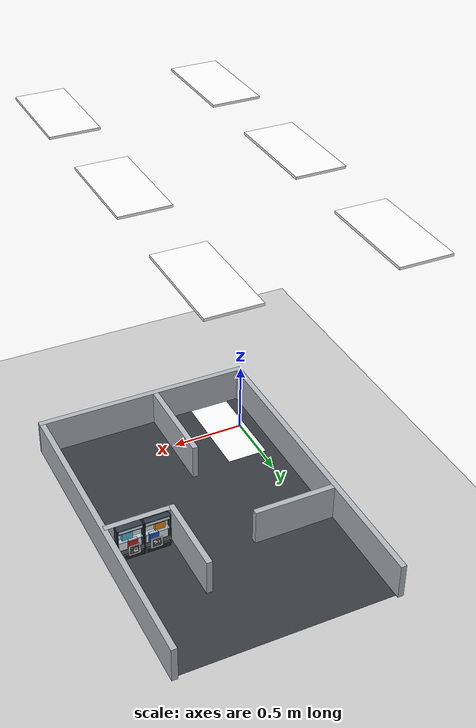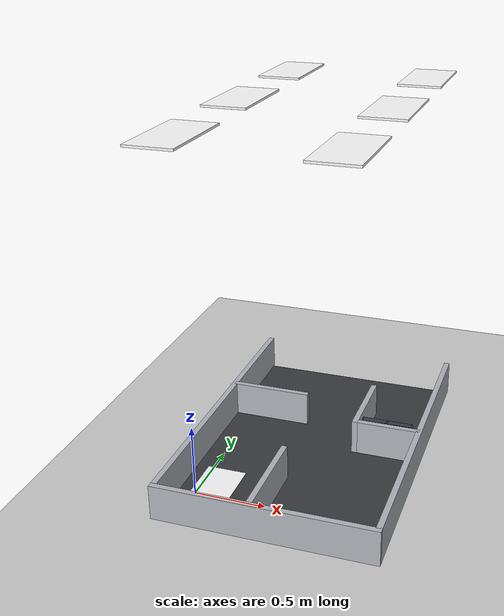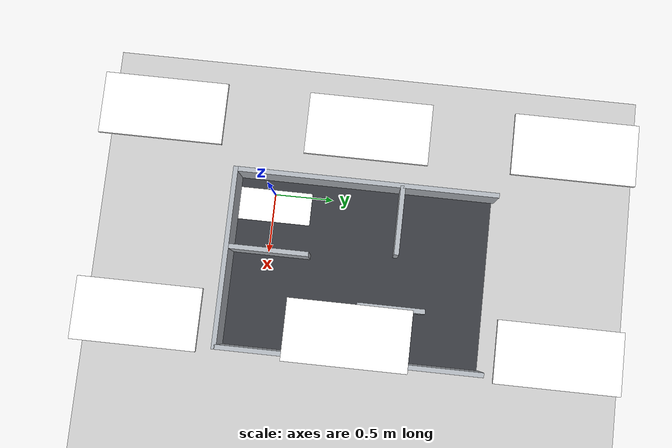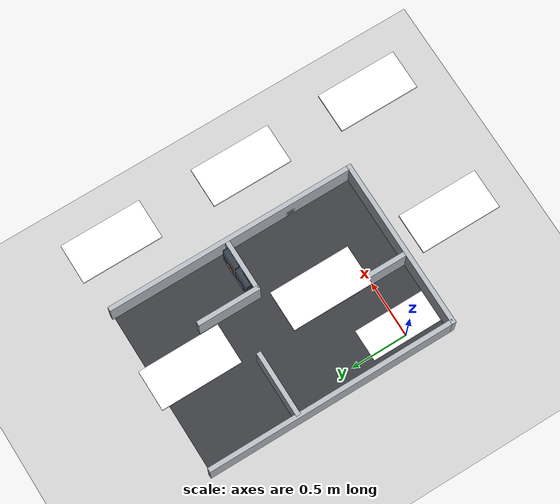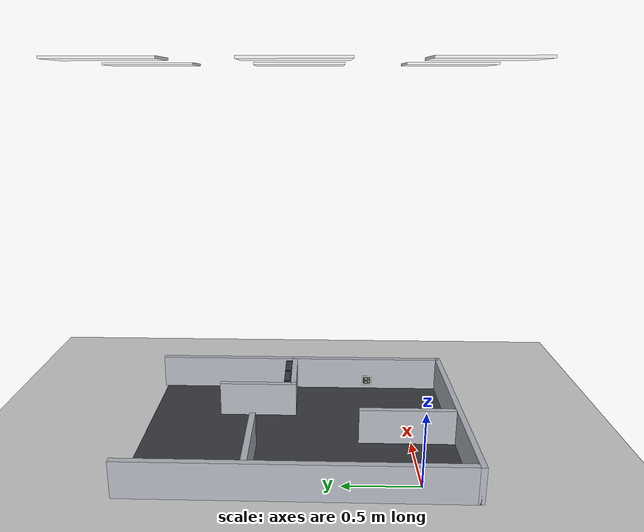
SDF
<sdf version="1.8">
 <world name="default">
  <model name="ground_plane">
   <static>true</static>
   <link name="link">
    <collision name="collision">
     <geometry><plane><normal>0 0 1</normal><size>10 10</size></plane></geometry>
    </collision>
    <visual name="visual">
     <geometry><plane><normal>0 0 1</normal><size>10 10</size></plane></geometry>
     <material><ambient>0.8 0.8 0.8 1</ambient><diffuse>0.8 0.8 0.8 1</diffuse></material>
    </visual>
   </link>
  </model>
  <model name="arena_interior_floor">
   <static>true</static>
   <pose>0.6000 0.7800 0.0005 0 0 0</pose>
   <link name="link">
    <collision name="collision"><geometry><box><size>1.4400 2.1600 0.0010</size></box></geometry></collision>
    <visual name="visual">
     <geometry><box><size>1.4400 2.1600 0.0010</size></box></geometry>
     <material>
      <ambient>0.18 0.18 0.20 1</ambient>
      <diffuse>0.22 0.23 0.25 1</diffuse>
      <specular>0.12 0.12 0.12 1</specular>
     </material>
    </visual>
   </link>
  </model>
  <model name="office_ceiling_fixtures">
   <static>true</static>
   <link name="link">
    <visual name="troffer_0">
     <pose>0.10 -0.22 2.505 0 0 0</pose>
     <geometry><box><size>0.30 0.60 0.015</size></box></geometry>
     <material><ambient>1 1 1 1</ambient><diffuse>1 1 1 1</diffuse><emissive>0.9 0.9 0.95 1</emissive></material>
    </visual>
    <visual name="troffer_1">
     <pose>1.10 -0.22 2.505 0 0 0</pose>
     <geometry><box><size>0.30 0.60 0.015</size></box></geometry>
     <material><ambient>1 1 1 1</ambient><diffuse>1 1 1 1</diffuse><emissive>0.9 0.9 0.95 1</emissive></material>
    </visual>
    <visual name="troffer_2">
     <pose>0.10 0.78 2.505 0 0 0</pose>
     <geometry><box><size>0.30 0.60 0.015</size></box></geometry>
     <material><ambient>1 1 1 1</ambient><diffuse>1 1 1 1</diffuse><emissive>0.9 0.9 0.95 1</emissive></material>
    </visual>
    <visual name="troffer_3">
     <pose>1.10 0.78 2.505 0 0 0</pose>
     <geometry><box><size>0.30 0.60 0.015</size></box></geometry>
     <material><ambient>1 1 1 1</ambient><diffuse>1 1 1 1</diffuse><emissive>0.9 0.9 0.95 1</emissive></material>
    </visual>
    <visual name="troffer_4">
     <pose>0.10 1.78 2.505 0 0 0</pose>
     <geometry><box><size>0.30 0.60 0.015</size></box></geometry>
     <material><ambient>1 1 1 1</ambient><diffuse>1 1 1 1</diffuse><emissive>0.9 0.9 0.95 1</emissive></material>
    </visual>
    <visual name="troffer_5">
     <pose>1.10 1.78 2.505 0 0 0</pose>
     <geometry><box><size>0.30 0.60 0.015</size></box></geometry>
     <material><ambient>1 1 1 1</ambient><diffuse>1 1 1 1</diffuse><emissive>0.9 0.9 0.95 1</emissive></material>
    </visual>
   </link>
  </model>
  <model name="wall_south">
   <static>true</static>
   <pose>0.6000 -0.3200 0.1250 0 0 0</pose>
   <link name="link">
    <collision name="collision"><geometry><box><size>1.5200 0.0400 0.2500</size></box></geometry></collision>
    <visual name="visual">
     <geometry><box><size>1.5200 0.0400 0.2500</size></box></geometry>
     <material>
      <ambient>0.7 0.72 0.75 1</ambient>
      <diffuse>0.7 0.72 0.75 1</diffuse>
      <specular>0.1 0.1 0.1 1</specular>
     </material>
    </visual>
   </link>
  </model>
  <model name="wall_west">
   <static>true</static>
   <pose>-0.1400 0.7800 0.1250 0 0 0</pose>
   <link name="link">
    <collision name="collision"><geometry><box><size>0.0400 2.2000 0.2500</size></box></geometry></collision>
    <visual name="visual">
     <geometry><box><size>0.0400 2.2000 0.2500</size></box></geometry>
     <material>
      <ambient>0.7 0.72 0.75 1</ambient>
      <diffuse>0.7 0.72 0.75 1</diffuse>
      <specular>0.1 0.1 0.1 1</specular>
     </material>
    </visual>
   </link>
  </model>
  <model name="wall_east">
   <static>true</static>
   <pose>1.3400 0.7800 0.1250 0 0 0</pose>
   <link name="link">
    <collision name="collision"><geometry><box><size>0.0400 2.2000 0.2500</size></box></geometry></collision>
    <visual name="visual">
     <geometry><box><size>0.0400 2.2000 0.2500</size></box></geometry>
     <material>
      <ambient>0.7 0.72 0.75 1</ambient>
      <diffuse>0.7 0.72 0.75 1</diffuse>
      <specular>0.1 0.1 0.1 1</specular>
     </material>
    </visual>
   </link>
  </model>
  <model name="wall_shelf1_divider">
   <static>true</static>
   <pose>0.1500 1.0800 0.1250 0 0 0</pose>
   <link name="link">
    <collision name="collision"><geometry><box><size>0.5800 0.0400 0.2500</size></box></geometry></collision>
    <visual name="visual">
     <geometry><box><size>0.5800 0.0400 0.2500</size></box></geometry>
     <material>
      <ambient>0.7 0.72 0.75 1</ambient>
      <diffuse>0.7 0.72 0.75 1</diffuse>
      <specular>0.1 0.1 0.1 1</specular>
     </material>
    </visual>
   </link>
  </model>
  <model name="wall_center_pillar">
   <static>true</static>
   <pose>0.5100 0.0300 0.1250 0 0 0</pose>
   <link name="link">
    <collision name="collision"><geometry><box><size>0.0400 0.6600 0.2500</size></box></geometry></collision>
    <visual name="visual">
     <geometry><box><size>0.0400 0.6600 0.2500</size></box></geometry>
     <material>
      <ambient>0.7 0.72 0.75 1</ambient>
      <diffuse>0.7 0.72 0.75 1</diffuse>
      <specular>0.1 0.1 0.1 1</specular>
     </material>
    </visual>
   </link>
  </model>
  <model name="wall_shelf2_divider">
   <static>true</static>
   <pose>0.8800 1.0800 0.1250 0 0 0</pose>
   <link name="link">
    <collision name="collision"><geometry><box><size>0.0400 0.5600 0.2500</size></box></geometry></collision>
    <visual name="visual">
     <geometry><box><size>0.0400 0.5600 0.2500</size></box></geometry>
     <material>
      <ambient>0.7 0.72 0.75 1</ambient>
      <diffuse>0.7 0.72 0.75 1</diffuse>
      <specular>0.1 0.1 0.1 1</specular>
     </material>
    </visual>
   </link>
  </model>
  <model name="wall_shelf2_back">
   <static>true</static>
   <pose>1.1100 0.8200 0.1250 0 0 0</pose>
   <link name="link">
    <collision name="collision"><geometry><box><size>0.4600 0.0400 0.2500</size></box></geometry></collision>
    <visual name="visual">
     <geometry><box><size>0.4600 0.0400 0.2500</size></box></geometry>
     <material>
      <ambient>0.7 0.72 0.75 1</ambient>
      <diffuse>0.7 0.72 0.75 1</diffuse>
      <specular>0.1 0.1 0.1 1</specular>
     </material>
    </visual>
   </link>
  </model>
  <model name="shelf2_supermarket_cooler_1">
   <static>true</static>
   <pose>1.0100 0.8650 0.1250 0 0 0</pose>
   <link name="link">
    <collision name="collision"><geometry><box><size>0.1800 0.0500 0.2500</size></box></geometry></collision>
    <visual name="back">
     <pose>0 -0.021 0 0 0 0</pose>
     <geometry><box><size>0.176 0.008 0.250</size></box></geometry>
     <material>
      <ambient>0.12 0.14 0.16 1</ambient>
      <diffuse>0.16 0.18 0.22 1</diffuse>
      <specular>0.3 0.3 0.3 1</specular>
     </material>
    </visual>
    <visual name="side_L">
     <pose>-0.086 0 0 0 0 0</pose>
     <geometry><box><size>0.008 0.050 0.250</size></box></geometry>
     <material><ambient>0.12 0.14 0.16 1</ambient><diffuse>0.16 0.18 0.22 1</diffuse></material>
    </visual>
    <visual name="side_R">
     <pose>0.086 0 0 0 0 0</pose>
     <geometry><box><size>0.008 0.050 0.250</size></box></geometry>
     <material><ambient>0.12 0.14 0.16 1</ambient><diffuse>0.16 0.18 0.22 1</diffuse></material>
    </visual>
    <visual name="kickplate">
     <pose>0 0 -0.105 0 0 0</pose>
     <geometry><box><size>0.176 0.050 0.040</size></box></geometry>
     <material><ambient>0.10 0.10 0.12 1</ambient><diffuse>0.14 0.14 0.16 1</diffuse></material>
    </visual>
    <visual name="canopy">
     <pose>0 0 0.110 0 0 0</pose>
     <geometry><box><size>0.176 0.050 0.030</size></box></geometry>
     <material><ambient>0.15 0.18 0.22 1</ambient><diffuse>0.20 0.24 0.28 1</diffuse></material>
    </visual>
    <visual name="top_light">
     <pose>0 0.024 0.110 0 0 0</pose>
     <geometry><box><size>0.160 0.003 0.020</size></box></geometry>
     <material>
      <ambient>0.7 0.9 1 1</ambient>
      <diffuse>0.85 0.95 1 1</diffuse>
      <emissive>0.7 0.9 1 1</emissive>
     </material>
    </visual>
    <visual name="lining">
     <pose>0 -0.015 0 0 0 0</pose>
     <geometry><box><size>0.164 0.005 0.180</size></box></geometry>
     <material><ambient>0.85 0.88 0.90 1</ambient><diffuse>0.92 0.94 0.96 1</diffuse></material>
    </visual>
    <visual name="price_rail">
     <pose>0 0.024 -0.057 0 0 0</pose>
     <geometry><box><size>0.176 0.004 0.035</size></box></geometry>
     <material>
      <ambient>0.3 0.3 0.35 1</ambient>
      <diffuse>0.4 0.4 0.45 1</diffuse>
      <specular>0.5 0.5 0.5 1</specular>
     </material>
    </visual>
    <visual name="glass_shelf">
     <pose>0 0.002 0.020 0 0 0</pose>
     <geometry><box><size>0.164 0.035 0.006</size></box></geometry>
     <material><ambient>0.7 0.85 0.9 0.8</ambient><diffuse>0.75 0.90 0.95 0.8</diffuse></material>
    </visual>
    <visual name="dairy_1">
     <pose>0.02 0.002 -0.030 0 0 0</pose>
     <geometry><box><size>0.060 0.030 0.075</size></box></geometry>
     <material><ambient>0.10 0.25 0.65 1</ambient><diffuse>0.15 0.35 0.75 1</diffuse></material>
    </visual>
    <visual name="drink_1">
     <pose>-0.02 0.002 0.060 0 0 0</pose>
     <geometry><box><size>0.070 0.025 0.060</size></box></geometry>
     <material><ambient>0.70 0.40 0.05 1</ambient><diffuse>0.95 0.55 0.10 1</diffuse></material>
    </visual>
   </link>
  </model>
  <model name="shelf2_supermarket_cooler_2">
   <static>true</static>
   <pose>1.1900 0.8650 0.1250 0 0 0</pose>
   <link name="link">
    <collision name="collision"><geometry><box><size>0.1800 0.0500 0.2500</size></box></geometry></collision>
    <visual name="back">
     <pose>0 -0.021 0 0 0 0</pose>
     <geometry><box><size>0.176 0.008 0.250</size></box></geometry>
     <material>
      <ambient>0.12 0.14 0.16 1</ambient>
      <diffuse>0.16 0.18 0.22 1</diffuse>
      <specular>0.3 0.3 0.3 1</specular>
     </material>
    </visual>
    <visual name="side_L">
     <pose>-0.086 0 0 0 0 0</pose>
     <geometry><box><size>0.008 0.050 0.250</size></box></geometry>
     <material><ambient>0.12 0.14 0.16 1</ambient><diffuse>0.16 0.18 0.22 1</diffuse></material>
    </visual>
    <visual name="side_R">
     <pose>0.086 0 0 0 0 0</pose>
     <geometry><box><size>0.008 0.050 0.250</size></box></geometry>
     <material><ambient>0.12 0.14 0.16 1</ambient><diffuse>0.16 0.18 0.22 1</diffuse></material>
    </visual>
    <visual name="kickplate">
     <pose>0 0 -0.105 0 0 0</pose>
     <geometry><box><size>0.176 0.050 0.040</size></box></geometry>
     <material><ambient>0.10 0.10 0.12 1</ambient><diffuse>0.14 0.14 0.16 1</diffuse></material>
    </visual>
    <visual name="canopy">
     <pose>0 0 0.110 0 0 0</pose>
     <geometry><box><size>0.176 0.050 0.030</size></box></geometry>
     <material><ambient>0.15 0.18 0.22 1</ambient><diffuse>0.20 0.24 0.28 1</diffuse></material>
    </visual>
    <visual name="top_light">
     <pose>0 0.024 0.110 0 0 0</pose>
     <geometry><box><size>0.160 0.003 0.020</size></box></geometry>
     <material>
      <ambient>0.7 0.9 1 1</ambient>
      <diffuse>0.85 0.95 1 1</diffuse>
      <emissive>0.7 0.9 1 1</emissive>
     </material>
    </visual>
    <visual name="lining">
     <pose>0 -0.015 0 0 0 0</pose>
     <geometry><box><size>0.164 0.005 0.180</size></box></geometry>
     <material><ambient>0.85 0.88 0.90 1</ambient><diffuse>0.92 0.94 0.96 1</diffuse></material>
    </visual>
    <visual name="price_rail">
     <pose>0 0.024 -0.057 0 0 0</pose>
     <geometry><box><size>0.176 0.004 0.035</size></box></geometry>
     <material>
      <ambient>0.3 0.3 0.35 1</ambient>
      <diffuse>0.4 0.4 0.45 1</diffuse>
      <specular>0.5 0.5 0.5 1</specular>
     </material>
    </visual>
    <visual name="glass_shelf">
     <pose>0 0.002 0.020 0 0 0</pose>
     <geometry><box><size>0.164 0.035 0.006</size></box></geometry>
     <material><ambient>0.7 0.85 0.9 0.8</ambient><diffuse>0.75 0.90 0.95 0.8</diffuse></material>
    </visual>
    <visual name="dairy_2">
     <pose>-0.02 0.002 -0.030 0 0 0</pose>
     <geometry><box><size>0.060 0.030 0.075</size></box></geometry>
     <material><ambient>0.60 0.10 0.10 1</ambient><diffuse>0.80 0.15 0.15 1</diffuse></material>
    </visual>
    <visual name="drink_2">
     <pose>0.02 0.002 0.060 0 0 0</pose>
     <geometry><box><size>0.070 0.025 0.060</size></box></geometry>
     <material><ambient>0.25 0.60 0.75 1</ambient><diffuse>0.35 0.75 0.88 1</diffuse></material>
    </visual>
   </link>
  </model>
  <model name="aruco_5x5_id4">
   <static>true</static>
   <pose>1.0210 0.8920 0.0680 0.0000 0.0000 -1.5708</pose>
   <link name="link">
    <visual name="white_bg">
     <geometry><box><size>0.002 0.07714 0.07714</size></box></geometry>
     <material>
      <ambient>1 1 1 1</ambient>
      <diffuse>1 1 1 1</diffuse>
      <specular>0 0 0 1</specular>
      <emissive>0.92 0.92 0.92 1</emissive>
     </material>
    </visual>
    <visual name="cell_0_0">
     <pose>-0.0008 0.02571 0.02571 0 0 0</pose>
     <geometry><box><size>0.001 0.00866 0.00866</size></box></geometry>
     <material>
      <ambient>0 0 0 1</ambient>
      <diffuse>0 0 0 1</diffuse>
      <specular>0 0 0 1</specular>
      <emissive>0 0 0 1</emissive>
     </material>
    </visual>
    <visual name="cell_0_1">
     <pose>-0.0008 0.01714 0.02571 0 0 0</pose>
     <geometry><box><size>0.001 0.00866 0.00866</size></box></geometry>
     <material>
      <ambient>0 0 0 1</ambient>
      <diffuse>0 0 0 1</diffuse>
      <specular>0 0 0 1</specular>
      <emissive>0 0 0 1</emissive>
     </material>
    </visual>
    <visual name="cell_0_2">
     <pose>-0.0008 0.00857 0.02571 0 0 0</pose>
     <geometry><box><size>0.001 0.00866 0.00866</size></box></geometry>
     <material>
      <ambient>0 0 0 1</ambient>
      <diffuse>0 0 0 1</diffuse>
      <specular>0 0 0 1</specular>
      <emissive>0 0 0 1</emissive>
     </material>
    </visual>
    <visual name="cell_0_3">
     <pose>-0.0008 0.00000 0.02571 0 0 0</pose>
     <geometry><box><size>0.001 0.00866 0.00866</size></box></geometry>
     <material>
      <ambient>0 0 0 1</ambient>
      <diffuse>0 0 0 1</diffuse>
      <specular>0 0 0 1</specular>
      <emissive>0 0 0 1</emissive>
     </material>
    </visual>
    <visual name="cell_0_4">
     <pose>-0.0008 -0.00857 0.02571 0 0 0</pose>
     <geometry><box><size>0.001 0.00866 0.00866</size></box></geometry>
     <material>
      <ambient>0 0 0 1</ambient>
      <diffuse>0 0 0 1</diffuse>
      <specular>0 0 0 1</specular>
      <emissive>0 0 0 1</emissive>
     </material>
    </visual>
    <visual name="cell_0_5">
     <pose>-0.0008 -0.01714 0.02571 0 0 0</pose>
     <geometry><box><size>0.001 0.00866 0.00866</size></box></geometry>
     <material>
      <ambient>0 0 0 1</ambient>
      <diffuse>0 0 0 1</diffuse>
      <specular>0 0 0 1</specular>
      <emissive>0 0 0 1</emissive>
     </material>
    </visual>
    <visual name="cell_0_6">
     <pose>-0.0008 -0.02571 0.02571 0 0 0</pose>
     <geometry><box><size>0.001 0.00866 0.00866</size></box></geometry>
     <material>
      <ambient>0 0 0 1</ambient>
      <diffuse>0 0 0 1</diffuse>
      <specular>0 0 0 1</specular>
      <emissive>0 0 0 1</emissive>
     </material>
    </visual>
    <visual name="cell_1_0">
     <pose>-0.0008 0.02571 0.01714 0 0 0</pose>
     <geometry><box><size>0.001 0.00866 0.00866</size></box></geometry>
     <material>
      <ambient>0 0 0 1</ambient>
      <diffuse>0 0 0 1</diffuse>
      <specular>0 0 0 1</specular>
      <emissive>0 0 0 1</emissive>
     </material>
    </visual>
    <visual name="cell_1_3">
     <pose>-0.0008 0.00000 0.01714 0 0 0</pose>
     <geometry><box><size>0.001 0.00866 0.00866</size></box></geometry>
     <material>
      <ambient>0 0 0 1</ambient>
      <diffuse>0 0 0 1</diffuse>
      <specular>0 0 0 1</specular>
      <emissive>0 0 0 1</emissive>
     </material>
    </visual>
    <visual name="cell_1_5">
     <pose>-0.0008 -0.01714 0.01714 0 0 0</pose>
     <geometry><box><size>0.001 0.00866 0.00866</size></box></geometry>
     <material>
      <ambient>0 0 0 1</ambient>
      <diffuse>0 0 0 1</diffuse>
      <specular>0 0 0 1</specular>
      <emissive>0 0 0 1</emissive>
     </material>
    </visual>
    <visual name="cell_1_6">
     <pose>-0.0008 -0.02571 0.01714 0 0 0</pose>
     <geometry><box><size>0.001 0.00866 0.00866</size></box></geometry>
     <material>
      <ambient>0 0 0 1</ambient>
      <diffuse>0 0 0 1</diffuse>
      <specular>0 0 0 1</specular>
      <emissive>0 0 0 1</emissive>
     </material>
    </visual>
    <visual name="cell_2_0">
     <pose>-0.0008 0.02571 0.00857 0 0 0</pose>
     <geometry><box><size>0.001 0.00866 0.00866</size></box></geometry>
     <material>
      <ambient>0 0 0 1</ambient>
      <diffuse>0 0 0 1</diffuse>
      <specular>0 0 0 1</specular>
      <emissive>0 0 0 1</emissive>
     </material>
    </visual>
    <visual name="cell_2_4">
     <pose>-0.0008 -0.00857 0.00857 0 0 0</pose>
     <geometry><box><size>0.001 0.00866 0.00866</size></box></geometry>
     <material>
      <ambient>0 0 0 1</ambient>
      <diffuse>0 0 0 1</diffuse>
      <specular>0 0 0 1</specular>
      <emissive>0 0 0 1</emissive>
     </material>
    </visual>
    <visual name="cell_2_6">
     <pose>-0.0008 -0.02571 0.00857 0 0 0</pose>
     <geometry><box><size>0.001 0.00866 0.00866</size></box></geometry>
     <material>
      <ambient>0 0 0 1</ambient>
      <diffuse>0 0 0 1</diffuse>
      <specular>0 0 0 1</specular>
      <emissive>0 0 0 1</emissive>
     </material>
    </visual>
    <visual name="cell_3_0">
     <pose>-0.0008 0.02571 0.00000 0 0 0</pose>
     <geometry><box><size>0.001 0.00866 0.00866</size></box></geometry>
     <material>
      <ambient>0 0 0 1</ambient>
      <diffuse>0 0 0 1</diffuse>
      <specular>0 0 0 1</specular>
      <emissive>0 0 0 1</emissive>
     </material>
    </visual>
    <visual name="cell_3_1">
     <pose>-0.0008 0.01714 0.00000 0 0 0</pose>
     <geometry><box><size>0.001 0.00866 0.00866</size></box></geometry>
     <material>
      <ambient>0 0 0 1</ambient>
      <diffuse>0 0 0 1</diffuse>
      <specular>0 0 0 1</specular>
      <emissive>0 0 0 1</emissive>
     </material>
    </visual>
    <visual name="cell_3_4">
     <pose>-0.0008 -0.00857 0.00000 0 0 0</pose>
     <geometry><box><size>0.001 0.00866 0.00866</size></box></geometry>
     <material>
      <ambient>0 0 0 1</ambient>
      <diffuse>0 0 0 1</diffuse>
      <specular>0 0 0 1</specular>
      <emissive>0 0 0 1</emissive>
     </material>
    </visual>
    <visual name="cell_3_6">
     <pose>-0.0008 -0.02571 0.00000 0 0 0</pose>
     <geometry><box><size>0.001 0.00866 0.00866</size></box></geometry>
     <material>
      <ambient>0 0 0 1</ambient>
      <diffuse>0 0 0 1</diffuse>
      <specular>0 0 0 1</specular>
      <emissive>0 0 0 1</emissive>
     </material>
    </visual>
    <visual name="cell_4_0">
     <pose>-0.0008 0.02571 -0.00857 0 0 0</pose>
     <geometry><box><size>0.001 0.00866 0.00866</size></box></geometry>
     <material>
      <ambient>0 0 0 1</ambient>
      <diffuse>0 0 0 1</diffuse>
      <specular>0 0 0 1</specular>
      <emissive>0 0 0 1</emissive>
     </material>
    </visual>
    <visual name="cell_4_1">
     <pose>-0.0008 0.01714 -0.00857 0 0 0</pose>
     <geometry><box><size>0.001 0.00866 0.00866</size></box></geometry>
     <material>
      <ambient>0 0 0 1</ambient>
      <diffuse>0 0 0 1</diffuse>
      <specular>0 0 0 1</specular>
      <emissive>0 0 0 1</emissive>
     </material>
    </visual>
    <visual name="cell_4_3">
     <pose>-0.0008 0.00000 -0.00857 0 0 0</pose>
     <geometry><box><size>0.001 0.00866 0.00866</size></box></geometry>
     <material>
      <ambient>0 0 0 1</ambient>
      <diffuse>0 0 0 1</diffuse>
      <specular>0 0 0 1</specular>
      <emissive>0 0 0 1</emissive>
     </material>
    </visual>
    <visual name="cell_4_4">
     <pose>-0.0008 -0.00857 -0.00857 0 0 0</pose>
     <geometry><box><size>0.001 0.00866 0.00866</size></box></geometry>
     <material>
      <ambient>0 0 0 1</ambient>
      <diffuse>0 0 0 1</diffuse>
      <specular>0 0 0 1</specular>
      <emissive>0 0 0 1</emissive>
     </material>
    </visual>
    <visual name="cell_4_6">
     <pose>-0.0008 -0.02571 -0.00857 0 0 0</pose>
     <geometry><box><size>0.001 0.00866 0.00866</size></box></geometry>
     <material>
      <ambient>0 0 0 1</ambient>
      <diffuse>0 0 0 1</diffuse>
      <specular>0 0 0 1</specular>
      <emissive>0 0 0 1</emissive>
     </material>
    </visual>
    <visual name="cell_5_0">
     <pose>-0.0008 0.02571 -0.01714 0 0 0</pose>
     <geometry><box><size>0.001 0.00866 0.00866</size></box></geometry>
     <material>
      <ambient>0 0 0 1</ambient>
      <diffuse>0 0 0 1</diffuse>
      <specular>0 0 0 1</specular>
      <emissive>0 0 0 1</emissive>
     </material>
    </visual>
    <visual name="cell_5_1">
     <pose>-0.0008 0.01714 -0.01714 0 0 0</pose>
     <geometry><box><size>0.001 0.00866 0.00866</size></box></geometry>
     <material>
      <ambient>0 0 0 1</ambient>
      <diffuse>0 0 0 1</diffuse>
      <specular>0 0 0 1</specular>
      <emissive>0 0 0 1</emissive>
     </material>
    </visual>
    <visual name="cell_5_2">
     <pose>-0.0008 0.00857 -0.01714 0 0 0</pose>
     <geometry><box><size>0.001 0.00866 0.00866</size></box></geometry>
     <material>
      <ambient>0 0 0 1</ambient>
      <diffuse>0 0 0 1</diffuse>
      <specular>0 0 0 1</specular>
      <emissive>0 0 0 1</emissive>
     </material>
    </visual>
    <visual name="cell_5_4">
     <pose>-0.0008 -0.00857 -0.01714 0 0 0</pose>
     <geometry><box><size>0.001 0.00866 0.00866</size></box></geometry>
     <material>
      <ambient>0 0 0 1</ambient>
      <diffuse>0 0 0 1</diffuse>
      <specular>0 0 0 1</specular>
      <emissive>0 0 0 1</emissive>
     </material>
    </visual>
    <visual name="cell_5_5">
     <pose>-0.0008 -0.01714 -0.01714 0 0 0</pose>
     <geometry><box><size>0.001 0.00866 0.00866</size></box></geometry>
     <material>
      <ambient>0 0 0 1</ambient>
      <diffuse>0 0 0 1</diffuse>
      <specular>0 0 0 1</specular>
      <emissive>0 0 0 1</emissive>
     </material>
    </visual>
    <visual name="cell_5_6">
     <pose>-0.0008 -0.02571 -0.01714 0 0 0</pose>
     <geometry><box><size>0.001 0.00866 0.00866</size></box></geometry>
     <material>
      <ambient>0 0 0 1</ambient>
      <diffuse>0 0 0 1</diffuse>
      <specular>0 0 0 1</specular>
      <emissive>0 0 0 1</emissive>
     </material>
    </visual>
    <visual name="cell_6_0">
     <pose>-0.0008 0.02571 -0.02571 0 0 0</pose>
     <geometry><box><size>0.001 0.00866 0.00866</size></box></geometry>
     <material>
      <ambient>0 0 0 1</ambient>
      <diffuse>0 0 0 1</diffuse>
      <specular>0 0 0 1</specular>
      <emissive>0 0 0 1</emissive>
     </material>
    </visual>
    <visual name="cell_6_1">
     <pose>-0.0008 0.01714 -0.02571 0 0 0</pose>
     <geometry><box><size>0.001 0.00866 0.00866</size></box></geometry>
     <material>
      <ambient>0 0 0 1</ambient>
      <diffuse>0 0 0 1</diffuse>
      <specular>0 0 0 1</specular>
      <emissive>0 0 0 1</emissive>
     </material>
    </visual>
    <visual name="cell_6_2">
     <pose>-0.0008 0.00857 -0.02571 0 0 0</pose>
     <geometry><box><size>0.001 0.00866 0.00866</size></box></geometry>
     <material>
      <ambient>0 0 0 1</ambient>
      <diffuse>0 0 0 1</diffuse>
      <specular>0 0 0 1</specular>
      <emissive>0 0 0 1</emissive>
     </material>
    </visual>
    <visual name="cell_6_3">
     <pose>-0.0008 0.00000 -0.02571 0 0 0</pose>
     <geometry><box><size>0.001 0.00866 0.00866</size></box></geometry>
     <material>
      <ambient>0 0 0 1</ambient>
      <diffuse>0 0 0 1</diffuse>
      <specular>0 0 0 1</specular>
      <emissive>0 0 0 1</emissive>
     </material>
    </visual>
    <visual name="cell_6_4">
     <pose>-0.0008 -0.00857 -0.02571 0 0 0</pose>
     <geometry><box><size>0.001 0.00866 0.00866</size></box></geometry>
     <material>
      <ambient>0 0 0 1</ambient>
      <diffuse>0 0 0 1</diffuse>
      <specular>0 0 0 1</specular>
      <emissive>0 0 0 1</emissive>
     </material>
    </visual>
    <visual name="cell_6_5">
     <pose>-0.0008 -0.01714 -0.02571 0 0 0</pose>
     <geometry><box><size>0.001 0.00866 0.00866</size></box></geometry>
     <material>
      <ambient>0 0 0 1</ambient>
      <diffuse>0 0 0 1</diffuse>
      <specular>0 0 0 1</specular>
      <emissive>0 0 0 1</emissive>
     </material>
    </visual>
    <visual name="cell_6_6">
     <pose>-0.0008 -0.02571 -0.02571 0 0 0</pose>
     <geometry><box><size>0.001 0.00866 0.00866</size></box></geometry>
     <material>
      <ambient>0 0 0 1</ambient>
      <diffuse>0 0 0 1</diffuse>
      <specular>0 0 0 1</specular>
      <emissive>0 0 0 1</emissive>
     </material>
    </visual>
   </link>
  </model>
  <model name="aruco_5x5_id3_shelf2_left">
   <static>true</static>
   <pose>1.1710 0.8920 0.0680 0.0000 0.0000 -1.5708</pose>
   <link name="link">
    <visual name="white_bg">
     <geometry><box><size>0.002 0.07714 0.07714</size></box></geometry>
     <material>
      <ambient>1 1 1 1</ambient>
      <diffuse>1 1 1 1</diffuse>
      <specular>0 0 0 1</specular>
      <emissive>0.92 0.92 0.92 1</emissive>
     </material>
    </visual>
    <visual name="cell_0_0">
     <pose>-0.0008 0.02571 0.02571 0 0 0</pose>
     <geometry><box><size>0.001 0.00866 0.00866</size></box></geometry>
     <material>
      <ambient>0 0 0 1</ambient>
      <diffuse>0 0 0 1</diffuse>
      <specular>0 0 0 1</specular>
      <emissive>0 0 0 1</emissive>
     </material>
    </visual>
    <visual name="cell_0_1">
     <pose>-0.0008 0.01714 0.02571 0 0 0</pose>
     <geometry><box><size>0.001 0.00866 0.00866</size></box></geometry>
     <material>
      <ambient>0 0 0 1</ambient>
      <diffuse>0 0 0 1</diffuse>
      <specular>0 0 0 1</specular>
      <emissive>0 0 0 1</emissive>
     </material>
    </visual>
    <visual name="cell_0_2">
     <pose>-0.0008 0.00857 0.02571 0 0 0</pose>
     <geometry><box><size>0.001 0.00866 0.00866</size></box></geometry>
     <material>
      <ambient>0 0 0 1</ambient>
      <diffuse>0 0 0 1</diffuse>
      <specular>0 0 0 1</specular>
      <emissive>0 0 0 1</emissive>
     </material>
    </visual>
    <visual name="cell_0_3">
     <pose>-0.0008 0.00000 0.02571 0 0 0</pose>
     <geometry><box><size>0.001 0.00866 0.00866</size></box></geometry>
     <material>
      <ambient>0 0 0 1</ambient>
      <diffuse>0 0 0 1</diffuse>
      <specular>0 0 0 1</specular>
      <emissive>0 0 0 1</emissive>
     </material>
    </visual>
    <visual name="cell_0_4">
     <pose>-0.0008 -0.00857 0.02571 0 0 0</pose>
     <geometry><box><size>0.001 0.00866 0.00866</size></box></geometry>
     <material>
      <ambient>0 0 0 1</ambient>
      <diffuse>0 0 0 1</diffuse>
      <specular>0 0 0 1</specular>
      <emissive>0 0 0 1</emissive>
     </material>
    </visual>
    <visual name="cell_0_5">
     <pose>-0.0008 -0.01714 0.02571 0 0 0</pose>
     <geometry><box><size>0.001 0.00866 0.00866</size></box></geometry>
     <material>
      <ambient>0 0 0 1</ambient>
      <diffuse>0 0 0 1</diffuse>
      <specular>0 0 0 1</specular>
      <emissive>0 0 0 1</emissive>
     </material>
    </visual>
    <visual name="cell_0_6">
     <pose>-0.0008 -0.02571 0.02571 0 0 0</pose>
     <geometry><box><size>0.001 0.00866 0.00866</size></box></geometry>
     <material>
      <ambient>0 0 0 1</ambient>
      <diffuse>0 0 0 1</diffuse>
      <specular>0 0 0 1</specular>
      <emissive>0 0 0 1</emissive>
     </material>
    </visual>
    <visual name="cell_1_0">
     <pose>-0.0008 0.02571 0.01714 0 0 0</pose>
     <geometry><box><size>0.001 0.00866 0.00866</size></box></geometry>
     <material>
      <ambient>0 0 0 1</ambient>
      <diffuse>0 0 0 1</diffuse>
      <specular>0 0 0 1</specular>
      <emissive>0 0 0 1</emissive>
     </material>
    </visual>
    <visual name="cell_1_2">
     <pose>-0.0008 0.00857 0.01714 0 0 0</pose>
     <geometry><box><size>0.001 0.00866 0.00866</size></box></geometry>
     <material>
      <ambient>0 0 0 1</ambient>
      <diffuse>0 0 0 1</diffuse>
      <specular>0 0 0 1</specular>
      <emissive>0 0 0 1</emissive>
     </material>
    </visual>
    <visual name="cell_1_3">
     <pose>-0.0008 0.00000 0.01714 0 0 0</pose>
     <geometry><box><size>0.001 0.00866 0.00866</size></box></geometry>
     <material>
      <ambient>0 0 0 1</ambient>
      <diffuse>0 0 0 1</diffuse>
      <specular>0 0 0 1</specular>
      <emissive>0 0 0 1</emissive>
     </material>
    </visual>
    <visual name="cell_1_4">
     <pose>-0.0008 -0.00857 0.01714 0 0 0</pose>
     <geometry><box><size>0.001 0.00866 0.00866</size></box></geometry>
     <material>
      <ambient>0 0 0 1</ambient>
      <diffuse>0 0 0 1</diffuse>
      <specular>0 0 0 1</specular>
      <emissive>0 0 0 1</emissive>
     </material>
    </visual>
    <visual name="cell_1_5">
     <pose>-0.0008 -0.01714 0.01714 0 0 0</pose>
     <geometry><box><size>0.001 0.00866 0.00866</size></box></geometry>
     <material>
      <ambient>0 0 0 1</ambient>
      <diffuse>0 0 0 1</diffuse>
      <specular>0 0 0 1</specular>
      <emissive>0 0 0 1</emissive>
     </material>
    </visual>
    <visual name="cell_1_6">
     <pose>-0.0008 -0.02571 0.01714 0 0 0</pose>
     <geometry><box><size>0.001 0.00866 0.00866</size></box></geometry>
     <material>
      <ambient>0 0 0 1</ambient>
      <diffuse>0 0 0 1</diffuse>
      <specular>0 0 0 1</specular>
      <emissive>0 0 0 1</emissive>
     </material>
    </visual>
    <visual name="cell_2_0">
     <pose>-0.0008 0.02571 0.00857 0 0 0</pose>
     <geometry><box><size>0.001 0.00866 0.00866</size></box></geometry>
     <material>
      <ambient>0 0 0 1</ambient>
      <diffuse>0 0 0 1</diffuse>
      <specular>0 0 0 1</specular>
      <emissive>0 0 0 1</emissive>
     </material>
    </visual>
    <visual name="cell_2_1">
     <pose>-0.0008 0.01714 0.00857 0 0 0</pose>
     <geometry><box><size>0.001 0.00866 0.00866</size></box></geometry>
     <material>
      <ambient>0 0 0 1</ambient>
      <diffuse>0 0 0 1</diffuse>
      <specular>0 0 0 1</specular>
      <emissive>0 0 0 1</emissive>
     </material>
    </visual>
    <visual name="cell_2_2">
     <pose>-0.0008 0.00857 0.00857 0 0 0</pose>
     <geometry><box><size>0.001 0.00866 0.00866</size></box></geometry>
     <material>
      <ambient>0 0 0 1</ambient>
      <diffuse>0 0 0 1</diffuse>
      <specular>0 0 0 1</specular>
      <emissive>0 0 0 1</emissive>
     </material>
    </visual>
    <visual name="cell_2_6">
     <pose>-0.0008 -0.02571 0.00857 0 0 0</pose>
     <geometry><box><size>0.001 0.00866 0.00866</size></box></geometry>
     <material>
      <ambient>0 0 0 1</ambient>
      <diffuse>0 0 0 1</diffuse>
      <specular>0 0 0 1</specular>
      <emissive>0 0 0 1</emissive>
     </material>
    </visual>
    <visual name="cell_3_0">
     <pose>-0.0008 0.02571 0.00000 0 0 0</pose>
     <geometry><box><size>0.001 0.00866 0.00866</size></box></geometry>
     <material>
      <ambient>0 0 0 1</ambient>
      <diffuse>0 0 0 1</diffuse>
      <specular>0 0 0 1</specular>
      <emissive>0 0 0 1</emissive>
     </material>
    </visual>
    <visual name="cell_3_1">
     <pose>-0.0008 0.01714 0.00000 0 0 0</pose>
     <geometry><box><size>0.001 0.00866 0.00866</size></box></geometry>
     <material>
      <ambient>0 0 0 1</ambient>
      <diffuse>0 0 0 1</diffuse>
      <specular>0 0 0 1</specular>
      <emissive>0 0 0 1</emissive>
     </material>
    </visual>
    <visual name="cell_3_2">
     <pose>-0.0008 0.00857 0.00000 0 0 0</pose>
     <geometry><box><size>0.001 0.00866 0.00866</size></box></geometry>
     <material>
      <ambient>0 0 0 1</ambient>
      <diffuse>0 0 0 1</diffuse>
      <specular>0 0 0 1</specular>
      <emissive>0 0 0 1</emissive>
     </material>
    </visual>
    <visual name="cell_3_4">
     <pose>-0.0008 -0.00857 0.00000 0 0 0</pose>
     <geometry><box><size>0.001 0.00866 0.00866</size></box></geometry>
     <material>
      <ambient>0 0 0 1</ambient>
      <diffuse>0 0 0 1</diffuse>
      <specular>0 0 0 1</specular>
      <emissive>0 0 0 1</emissive>
     </material>
    </visual>
    <visual name="cell_3_6">
     <pose>-0.0008 -0.02571 0.00000 0 0 0</pose>
     <geometry><box><size>0.001 0.00866 0.00866</size></box></geometry>
     <material>
      <ambient>0 0 0 1</ambient>
      <diffuse>0 0 0 1</diffuse>
      <specular>0 0 0 1</specular>
      <emissive>0 0 0 1</emissive>
     </material>
    </visual>
    <visual name="cell_4_0">
     <pose>-0.0008 0.02571 -0.00857 0 0 0</pose>
     <geometry><box><size>0.001 0.00866 0.00866</size></box></geometry>
     <material>
      <ambient>0 0 0 1</ambient>
      <diffuse>0 0 0 1</diffuse>
      <specular>0 0 0 1</specular>
      <emissive>0 0 0 1</emissive>
     </material>
    </visual>
    <visual name="cell_4_1">
     <pose>-0.0008 0.01714 -0.00857 0 0 0</pose>
     <geometry><box><size>0.001 0.00866 0.00866</size></box></geometry>
     <material>
      <ambient>0 0 0 1</ambient>
      <diffuse>0 0 0 1</diffuse>
      <specular>0 0 0 1</specular>
      <emissive>0 0 0 1</emissive>
     </material>
    </visual>
    <visual name="cell_4_6">
     <pose>-0.0008 -0.02571 -0.00857 0 0 0</pose>
     <geometry><box><size>0.001 0.00866 0.00866</size></box></geometry>
     <material>
      <ambient>0 0 0 1</ambient>
      <diffuse>0 0 0 1</diffuse>
      <specular>0 0 0 1</specular>
      <emissive>0 0 0 1</emissive>
     </material>
    </visual>
    <visual name="cell_5_0">
     <pose>-0.0008 0.02571 -0.01714 0 0 0</pose>
     <geometry><box><size>0.001 0.00866 0.00866</size></box></geometry>
     <material>
      <ambient>0 0 0 1</ambient>
      <diffuse>0 0 0 1</diffuse>
      <specular>0 0 0 1</specular>
      <emissive>0 0 0 1</emissive>
     </material>
    </visual>
    <visual name="cell_5_2">
     <pose>-0.0008 0.00857 -0.01714 0 0 0</pose>
     <geometry><box><size>0.001 0.00866 0.00866</size></box></geometry>
     <material>
      <ambient>0 0 0 1</ambient>
      <diffuse>0 0 0 1</diffuse>
      <specular>0 0 0 1</specular>
      <emissive>0 0 0 1</emissive>
     </material>
    </visual>
    <visual name="cell_5_6">
     <pose>-0.0008 -0.02571 -0.01714 0 0 0</pose>
     <geometry><box><size>0.001 0.00866 0.00866</size></box></geometry>
     <material>
      <ambient>0 0 0 1</ambient>
      <diffuse>0 0 0 1</diffuse>
      <specular>0 0 0 1</specular>
      <emissive>0 0 0 1</emissive>
     </material>
    </visual>
    <visual name="cell_6_0">
     <pose>-0.0008 0.02571 -0.02571 0 0 0</pose>
     <geometry><box><size>0.001 0.00866 0.00866</size></box></geometry>
     <material>
      <ambient>0 0 0 1</ambient>
      <diffuse>0 0 0 1</diffuse>
      <specular>0 0 0 1</specular>
      <emissive>0 0 0 1</emissive>
     </material>
    </visual>
    <visual name="cell_6_1">
     <pose>-0.0008 0.01714 -0.02571 0 0 0</pose>
     <geometry><box><size>0.001 0.00866 0.00866</size></box></geometry>
     <material>
      <ambient>0 0 0 1</ambient>
      <diffuse>0 0 0 1</diffuse>
      <specular>0 0 0 1</specular>
      <emissive>0 0 0 1</emissive>
     </material>
    </visual>
    <visual name="cell_6_2">
     <pose>-0.0008 0.00857 -0.02571 0 0 0</pose>
     <geometry><box><size>0.001 0.00866 0.00866</size></box></geometry>
     <material>
      <ambient>0 0 0 1</ambient>
      <diffuse>0 0 0 1</diffuse>
      <specular>0 0 0 1</specular>
      <emissive>0 0 0 1</emissive>
     </material>
    </visual>
    <visual name="cell_6_3">
     <pose>-0.0008 0.00000 -0.02571 0 0 0</pose>
     <geometry><box><size>0.001 0.00866 0.00866</size></box></geometry>
     <material>
      <ambient>0 0 0 1</ambient>
      <diffuse>0 0 0 1</diffuse>
      <specular>0 0 0 1</specular>
      <emissive>0 0 0 1</emissive>
     </material>
    </visual>
    <visual name="cell_6_4">
     <pose>-0.0008 -0.00857 -0.02571 0 0 0</pose>
     <geometry><box><size>0.001 0.00866 0.00866</size></box></geometry>
     <material>
      <ambient>0 0 0 1</ambient>
      <diffuse>0 0 0 1</diffuse>
      <specular>0 0 0 1</specular>
      <emissive>0 0 0 1</emissive>
     </material>
    </visual>
    <visual name="cell_6_5">
     <pose>-0.0008 -0.01714 -0.02571 0 0 0</pose>
     <geometry><box><size>0.001 0.00866 0.00866</size></box></geometry>
     <material>
      <ambient>0 0 0 1</ambient>
      <diffuse>0 0 0 1</diffuse>
      <specular>0 0 0 1</specular>
      <emissive>0 0 0 1</emissive>
     </material>
    </visual>
    <visual name="cell_6_6">
     <pose>-0.0008 -0.02571 -0.02571 0 0 0</pose>
     <geometry><box><size>0.001 0.00866 0.00866</size></box></geometry>
     <material>
      <ambient>0 0 0 1</ambient>
      <diffuse>0 0 0 1</diffuse>
      <specular>0 0 0 1</specular>
      <emissive>0 0 0 1</emissive>
     </material>
    </visual>
   </link>
  </model>
  <model name="aruco_5x5_id5">
   <static>true</static>
   <pose>1.3190 0.2430 0.0680 0.0000 0.0000 0.0000</pose>
   <link name="link">
    <visual name="white_bg">
     <geometry><box><size>0.002 0.07714 0.07714</size></box></geometry>
     <material>
      <ambient>1 1 1 1</ambient>
      <diffuse>1 1 1 1</diffuse>
      <specular>0 0 0 1</specular>
      <emissive>0.92 0.92 0.92 1</emissive>
     </material>
    </visual>
    <visual name="cell_0_0">
     <pose>-0.0008 0.02571 0.02571 0 0 0</pose>
     <geometry><box><size>0.001 0.00866 0.00866</size></box></geometry>
     <material>
      <ambient>0 0 0 1</ambient>
      <diffuse>0 0 0 1</diffuse>
      <specular>0 0 0 1</specular>
      <emissive>0 0 0 1</emissive>
     </material>
    </visual>
    <visual name="cell_0_1">
     <pose>-0.0008 0.01714 0.02571 0 0 0</pose>
     <geometry><box><size>0.001 0.00866 0.00866</size></box></geometry>
     <material>
      <ambient>0 0 0 1</ambient>
      <diffuse>0 0 0 1</diffuse>
      <specular>0 0 0 1</specular>
      <emissive>0 0 0 1</emissive>
     </material>
    </visual>
    <visual name="cell_0_2">
     <pose>-0.0008 0.00857 0.02571 0 0 0</pose>
     <geometry><box><size>0.001 0.00866 0.00866</size></box></geometry>
     <material>
      <ambient>0 0 0 1</ambient>
      <diffuse>0 0 0 1</diffuse>
      <specular>0 0 0 1</specular>
      <emissive>0 0 0 1</emissive>
     </material>
    </visual>
    <visual name="cell_0_3">
     <pose>-0.0008 0.00000 0.02571 0 0 0</pose>
     <geometry><box><size>0.001 0.00866 0.00866</size></box></geometry>
     <material>
      <ambient>0 0 0 1</ambient>
      <diffuse>0 0 0 1</diffuse>
      <specular>0 0 0 1</specular>
      <emissive>0 0 0 1</emissive>
     </material>
    </visual>
    <visual name="cell_0_4">
     <pose>-0.0008 -0.00857 0.02571 0 0 0</pose>
     <geometry><box><size>0.001 0.00866 0.00866</size></box></geometry>
     <material>
      <ambient>0 0 0 1</ambient>
      <diffuse>0 0 0 1</diffuse>
      <specular>0 0 0 1</specular>
      <emissive>0 0 0 1</emissive>
     </material>
    </visual>
    <visual name="cell_0_5">
     <pose>-0.0008 -0.01714 0.02571 0 0 0</pose>
     <geometry><box><size>0.001 0.00866 0.00866</size></box></geometry>
     <material>
      <ambient>0 0 0 1</ambient>
      <diffuse>0 0 0 1</diffuse>
      <specular>0 0 0 1</specular>
      <emissive>0 0 0 1</emissive>
     </material>
    </visual>
    <visual name="cell_0_6">
     <pose>-0.0008 -0.02571 0.02571 0 0 0</pose>
     <geometry><box><size>0.001 0.00866 0.00866</size></box></geometry>
     <material>
      <ambient>0 0 0 1</ambient>
      <diffuse>0 0 0 1</diffuse>
      <specular>0 0 0 1</specular>
      <emissive>0 0 0 1</emissive>
     </material>
    </visual>
    <visual name="cell_1_0">
     <pose>-0.0008 0.02571 0.01714 0 0 0</pose>
     <geometry><box><size>0.001 0.00866 0.00866</size></box></geometry>
     <material>
      <ambient>0 0 0 1</ambient>
      <diffuse>0 0 0 1</diffuse>
      <specular>0 0 0 1</specular>
      <emissive>0 0 0 1</emissive>
     </material>
    </visual>
    <visual name="cell_1_4">
     <pose>-0.0008 -0.00857 0.01714 0 0 0</pose>
     <geometry><box><size>0.001 0.00866 0.00866</size></box></geometry>
     <material>
      <ambient>0 0 0 1</ambient>
      <diffuse>0 0 0 1</diffuse>
      <specular>0 0 0 1</specular>
      <emissive>0 0 0 1</emissive>
     </material>
    </visual>
    <visual name="cell_1_6">
     <pose>-0.0008 -0.02571 0.01714 0 0 0</pose>
     <geometry><box><size>0.001 0.00866 0.00866</size></box></geometry>
     <material>
      <ambient>0 0 0 1</ambient>
      <diffuse>0 0 0 1</diffuse>
      <specular>0 0 0 1</specular>
      <emissive>0 0 0 1</emissive>
     </material>
    </visual>
    <visual name="cell_2_0">
     <pose>-0.0008 0.02571 0.00857 0 0 0</pose>
     <geometry><box><size>0.001 0.00866 0.00866</size></box></geometry>
     <material>
      <ambient>0 0 0 1</ambient>
      <diffuse>0 0 0 1</diffuse>
      <specular>0 0 0 1</specular>
      <emissive>0 0 0 1</emissive>
     </material>
    </visual>
    <visual name="cell_2_1">
     <pose>-0.0008 0.01714 0.00857 0 0 0</pose>
     <geometry><box><size>0.001 0.00866 0.00866</size></box></geometry>
     <material>
      <ambient>0 0 0 1</ambient>
      <diffuse>0 0 0 1</diffuse>
      <specular>0 0 0 1</specular>
      <emissive>0 0 0 1</emissive>
     </material>
    </visual>
    <visual name="cell_2_3">
     <pose>-0.0008 0.00000 0.00857 0 0 0</pose>
     <geometry><box><size>0.001 0.00866 0.00866</size></box></geometry>
     <material>
      <ambient>0 0 0 1</ambient>
      <diffuse>0 0 0 1</diffuse>
      <specular>0 0 0 1</specular>
      <emissive>0 0 0 1</emissive>
     </material>
    </visual>
    <visual name="cell_2_4">
     <pose>-0.0008 -0.00857 0.00857 0 0 0</pose>
     <geometry><box><size>0.001 0.00866 0.00866</size></box></geometry>
     <material>
      <ambient>0 0 0 1</ambient>
      <diffuse>0 0 0 1</diffuse>
      <specular>0 0 0 1</specular>
      <emissive>0 0 0 1</emissive>
     </material>
    </visual>
    <visual name="cell_2_5">
     <pose>-0.0008 -0.01714 0.00857 0 0 0</pose>
     <geometry><box><size>0.001 0.00866 0.00866</size></box></geometry>
     <material>
      <ambient>0 0 0 1</ambient>
      <diffuse>0 0 0 1</diffuse>
      <specular>0 0 0 1</specular>
      <emissive>0 0 0 1</emissive>
     </material>
    </visual>
    <visual name="cell_2_6">
     <pose>-0.0008 -0.02571 0.00857 0 0 0</pose>
     <geometry><box><size>0.001 0.00866 0.00866</size></box></geometry>
     <material>
      <ambient>0 0 0 1</ambient>
      <diffuse>0 0 0 1</diffuse>
      <specular>0 0 0 1</specular>
      <emissive>0 0 0 1</emissive>
     </material>
    </visual>
    <visual name="cell_3_0">
     <pose>-0.0008 0.02571 0.00000 0 0 0</pose>
     <geometry><box><size>0.001 0.00866 0.00866</size></box></geometry>
     <material>
      <ambient>0 0 0 1</ambient>
      <diffuse>0 0 0 1</diffuse>
      <specular>0 0 0 1</specular>
      <emissive>0 0 0 1</emissive>
     </material>
    </visual>
    <visual name="cell_3_1">
     <pose>-0.0008 0.01714 0.00000 0 0 0</pose>
     <geometry><box><size>0.001 0.00866 0.00866</size></box></geometry>
     <material>
      <ambient>0 0 0 1</ambient>
      <diffuse>0 0 0 1</diffuse>
      <specular>0 0 0 1</specular>
      <emissive>0 0 0 1</emissive>
     </material>
    </visual>
    <visual name="cell_3_2">
     <pose>-0.0008 0.00857 0.00000 0 0 0</pose>
     <geometry><box><size>0.001 0.00866 0.00866</size></box></geometry>
     <material>
      <ambient>0 0 0 1</ambient>
      <diffuse>0 0 0 1</diffuse>
      <specular>0 0 0 1</specular>
      <emissive>0 0 0 1</emissive>
     </material>
    </visual>
    <visual name="cell_3_3">
     <pose>-0.0008 0.00000 0.00000 0 0 0</pose>
     <geometry><box><size>0.001 0.00866 0.00866</size></box></geometry>
     <material>
      <ambient>0 0 0 1</ambient>
      <diffuse>0 0 0 1</diffuse>
      <specular>0 0 0 1</specular>
      <emissive>0 0 0 1</emissive>
     </material>
    </visual>
    <visual name="cell_3_5">
     <pose>-0.0008 -0.01714 0.00000 0 0 0</pose>
     <geometry><box><size>0.001 0.00866 0.00866</size></box></geometry>
     <material>
      <ambient>0 0 0 1</ambient>
      <diffuse>0 0 0 1</diffuse>
      <specular>0 0 0 1</specular>
      <emissive>0 0 0 1</emissive>
     </material>
    </visual>
    <visual name="cell_3_6">
     <pose>-0.0008 -0.02571 0.00000 0 0 0</pose>
     <geometry><box><size>0.001 0.00866 0.00866</size></box></geometry>
     <material>
      <ambient>0 0 0 1</ambient>
      <diffuse>0 0 0 1</diffuse>
      <specular>0 0 0 1</specular>
      <emissive>0 0 0 1</emissive>
     </material>
    </visual>
    <visual name="cell_4_0">
     <pose>-0.0008 0.02571 -0.00857 0 0 0</pose>
     <geometry><box><size>0.001 0.00866 0.00866</size></box></geometry>
     <material>
      <ambient>0 0 0 1</ambient>
      <diffuse>0 0 0 1</diffuse>
      <specular>0 0 0 1</specular>
      <emissive>0 0 0 1</emissive>
     </material>
    </visual>
    <visual name="cell_4_1">
     <pose>-0.0008 0.01714 -0.00857 0 0 0</pose>
     <geometry><box><size>0.001 0.00866 0.00866</size></box></geometry>
     <material>
      <ambient>0 0 0 1</ambient>
      <diffuse>0 0 0 1</diffuse>
      <specular>0 0 0 1</specular>
      <emissive>0 0 0 1</emissive>
     </material>
    </visual>
    <visual name="cell_4_2">
     <pose>-0.0008 0.00857 -0.00857 0 0 0</pose>
     <geometry><box><size>0.001 0.00866 0.00866</size></box></geometry>
     <material>
      <ambient>0 0 0 1</ambient>
      <diffuse>0 0 0 1</diffuse>
      <specular>0 0 0 1</specular>
      <emissive>0 0 0 1</emissive>
     </material>
    </visual>
    <visual name="cell_4_3">
     <pose>-0.0008 0.00000 -0.00857 0 0 0</pose>
     <geometry><box><size>0.001 0.00866 0.00866</size></box></geometry>
     <material>
      <ambient>0 0 0 1</ambient>
      <diffuse>0 0 0 1</diffuse>
      <specular>0 0 0 1</specular>
      <emissive>0 0 0 1</emissive>
     </material>
    </visual>
    <visual name="cell_4_4">
     <pose>-0.0008 -0.00857 -0.00857 0 0 0</pose>
     <geometry><box><size>0.001 0.00866 0.00866</size></box></geometry>
     <material>
      <ambient>0 0 0 1</ambient>
      <diffuse>0 0 0 1</diffuse>
      <specular>0 0 0 1</specular>
      <emissive>0 0 0 1</emissive>
     </material>
    </visual>
    <visual name="cell_4_6">
     <pose>-0.0008 -0.02571 -0.00857 0 0 0</pose>
     <geometry><box><size>0.001 0.00866 0.00866</size></box></geometry>
     <material>
      <ambient>0 0 0 1</ambient>
      <diffuse>0 0 0 1</diffuse>
      <specular>0 0 0 1</specular>
      <emissive>0 0 0 1</emissive>
     </material>
    </visual>
    <visual name="cell_5_0">
     <pose>-0.0008 0.02571 -0.01714 0 0 0</pose>
     <geometry><box><size>0.001 0.00866 0.00866</size></box></geometry>
     <material>
      <ambient>0 0 0 1</ambient>
      <diffuse>0 0 0 1</diffuse>
      <specular>0 0 0 1</specular>
      <emissive>0 0 0 1</emissive>
     </material>
    </visual>
    <visual name="cell_5_1">
     <pose>-0.0008 0.01714 -0.01714 0 0 0</pose>
     <geometry><box><size>0.001 0.00866 0.00866</size></box></geometry>
     <material>
      <ambient>0 0 0 1</ambient>
      <diffuse>0 0 0 1</diffuse>
      <specular>0 0 0 1</specular>
      <emissive>0 0 0 1</emissive>
     </material>
    </visual>
    <visual name="cell_5_4">
     <pose>-0.0008 -0.00857 -0.01714 0 0 0</pose>
     <geometry><box><size>0.001 0.00866 0.00866</size></box></geometry>
     <material>
      <ambient>0 0 0 1</ambient>
      <diffuse>0 0 0 1</diffuse>
      <specular>0 0 0 1</specular>
      <emissive>0 0 0 1</emissive>
     </material>
    </visual>
    <visual name="cell_5_6">
     <pose>-0.0008 -0.02571 -0.01714 0 0 0</pose>
     <geometry><box><size>0.001 0.00866 0.00866</size></box></geometry>
     <material>
      <ambient>0 0 0 1</ambient>
      <diffuse>0 0 0 1</diffuse>
      <specular>0 0 0 1</specular>
      <emissive>0 0 0 1</emissive>
     </material>
    </visual>
    <visual name="cell_6_0">
     <pose>-0.0008 0.02571 -0.02571 0 0 0</pose>
     <geometry><box><size>0.001 0.00866 0.00866</size></box></geometry>
     <material>
      <ambient>0 0 0 1</ambient>
      <diffuse>0 0 0 1</diffuse>
      <specular>0 0 0 1</specular>
      <emissive>0 0 0 1</emissive>
     </material>
    </visual>
    <visual name="cell_6_1">
     <pose>-0.0008 0.01714 -0.02571 0 0 0</pose>
     <geometry><box><size>0.001 0.00866 0.00866</size></box></geometry>
     <material>
      <ambient>0 0 0 1</ambient>
      <diffuse>0 0 0 1</diffuse>
      <specular>0 0 0 1</specular>
      <emissive>0 0 0 1</emissive>
     </material>
    </visual>
    <visual name="cell_6_2">
     <pose>-0.0008 0.00857 -0.02571 0 0 0</pose>
     <geometry><box><size>0.001 0.00866 0.00866</size></box></geometry>
     <material>
      <ambient>0 0 0 1</ambient>
      <diffuse>0 0 0 1</diffuse>
      <specular>0 0 0 1</specular>
      <emissive>0 0 0 1</emissive>
     </material>
    </visual>
    <visual name="cell_6_3">
     <pose>-0.0008 0.00000 -0.02571 0 0 0</pose>
     <geometry><box><size>0.001 0.00866 0.00866</size></box></geometry>
     <material>
      <ambient>0 0 0 1</ambient>
      <diffuse>0 0 0 1</diffuse>
      <specular>0 0 0 1</specular>
      <emissive>0 0 0 1</emissive>
     </material>
    </visual>
    <visual name="cell_6_4">
     <pose>-0.0008 -0.00857 -0.02571 0 0 0</pose>
     <geometry><box><size>0.001 0.00866 0.00866</size></box></geometry>
     <material>
      <ambient>0 0 0 1</ambient>
      <diffuse>0 0 0 1</diffuse>
      <specular>0 0 0 1</specular>
      <emissive>0 0 0 1</emissive>
     </material>
    </visual>
    <visual name="cell_6_5">
     <pose>-0.0008 -0.01714 -0.02571 0 0 0</pose>
     <geometry><box><size>0.001 0.00866 0.00866</size></box></geometry>
     <material>
      <ambient>0 0 0 1</ambient>
      <diffuse>0 0 0 1</diffuse>
      <specular>0 0 0 1</specular>
      <emissive>0 0 0 1</emissive>
     </material>
    </visual>
    <visual name="cell_6_6">
     <pose>-0.0008 -0.02571 -0.02571 0 0 0</pose>
     <geometry><box><size>0.001 0.00866 0.00866</size></box></geometry>
     <material>
      <ambient>0 0 0 1</ambient>
      <diffuse>0 0 0 1</diffuse>
      <specular>0 0 0 1</specular>
      <emissive>0 0 0 1</emissive>
     </material>
    </visual>
   </link>
  </model>
  <model name="home_parking_bays">
   <static>true</static>
   <pose>0.1000 0.0000 0.0010 0 0 0</pose>
   <link name="link">
    <visual name="visual">
     <geometry><plane><normal>0 0 1</normal><size>0.28 0.64</size></plane></geometry>
     <material>
      <diffuse>1 1 1 1</diffuse>
      <specular>0.2 0.2 0.2 1</specular>
      <pbr>
       <metal>
        <albedo_map>file:///home/omen/team/kernel-robot-repo-1/amr/pinky_precision_docking/models/img/parking_bays.png</albedo_map>
       </metal>
      </pbr>
     </material>
    </visual>
   </link>
  </model>
  <model name="camera">
   <static>true</static>
   <pose>0.60 0.78 2.20 0 1.5707963 1.5707963</pose>
   <link name="link">
    <inertial>
     <mass>0.1</mass>
     <inertia><ixx>0.000166667</ixx><iyy>0.000166667</iyy><izz>0.000166667</izz></inertia>
    </inertial>
    <sensor name="camera" type="camera">
     <camera>
      <horizontal_fov>1.60</horizontal_fov>
      <image><width>640</width><height>480</height></image>
      <clip><near>0.1</near><far>100</far></clip>
     </camera>
     <always_on>1</always_on>
     <update_rate>15</update_rate>
     <visualize>true</visualize>
     <topic>camera</topic>
    </sensor>
   </link>
  </model>
 </world>
</sdf>
